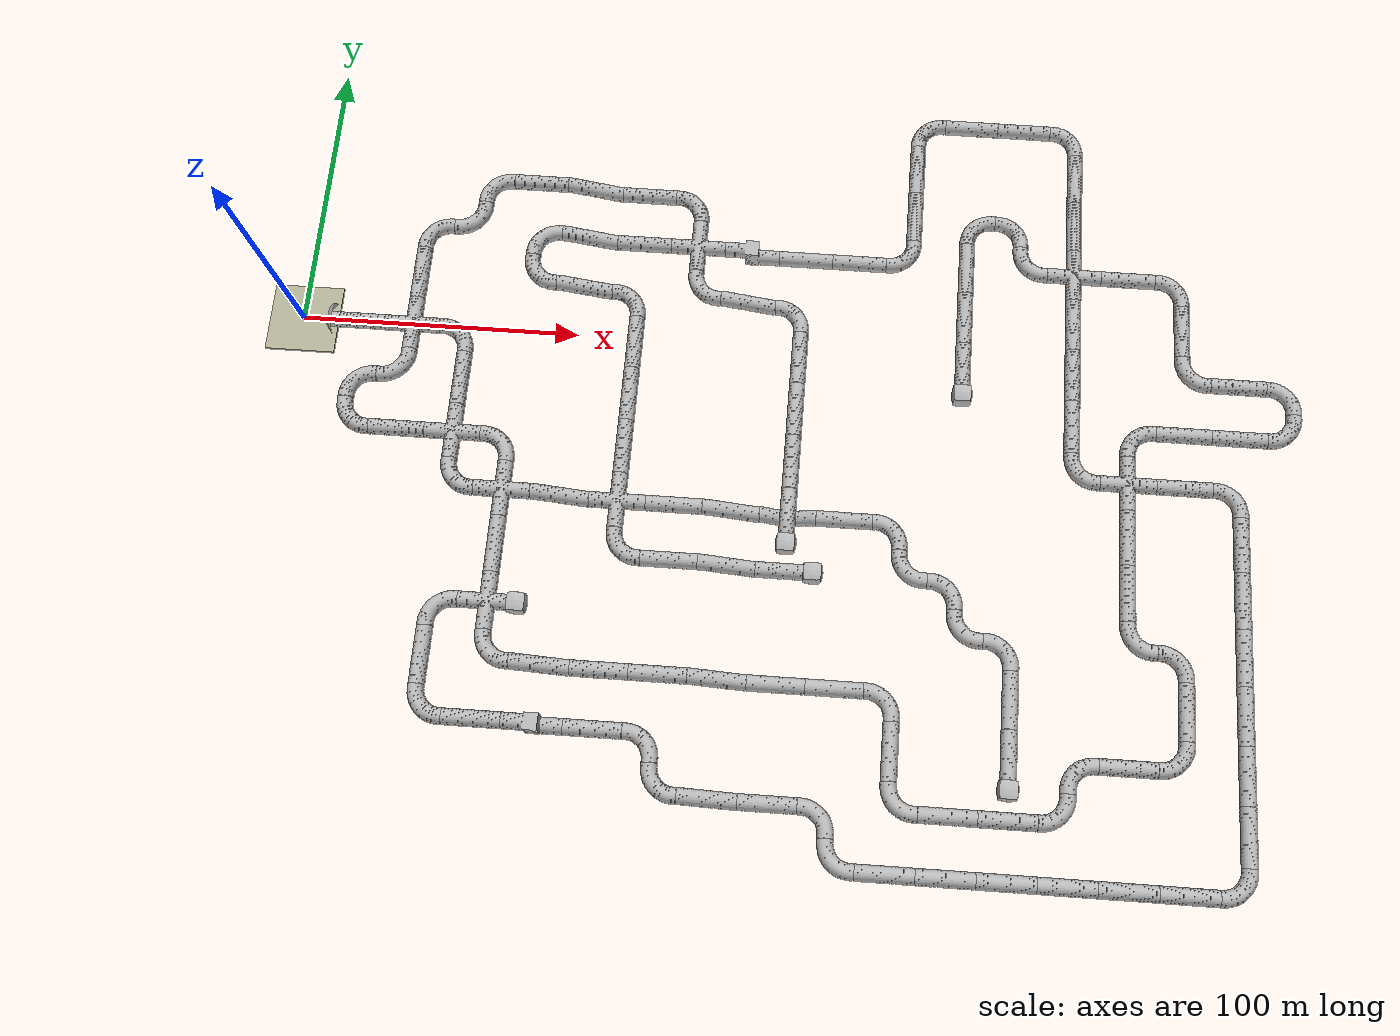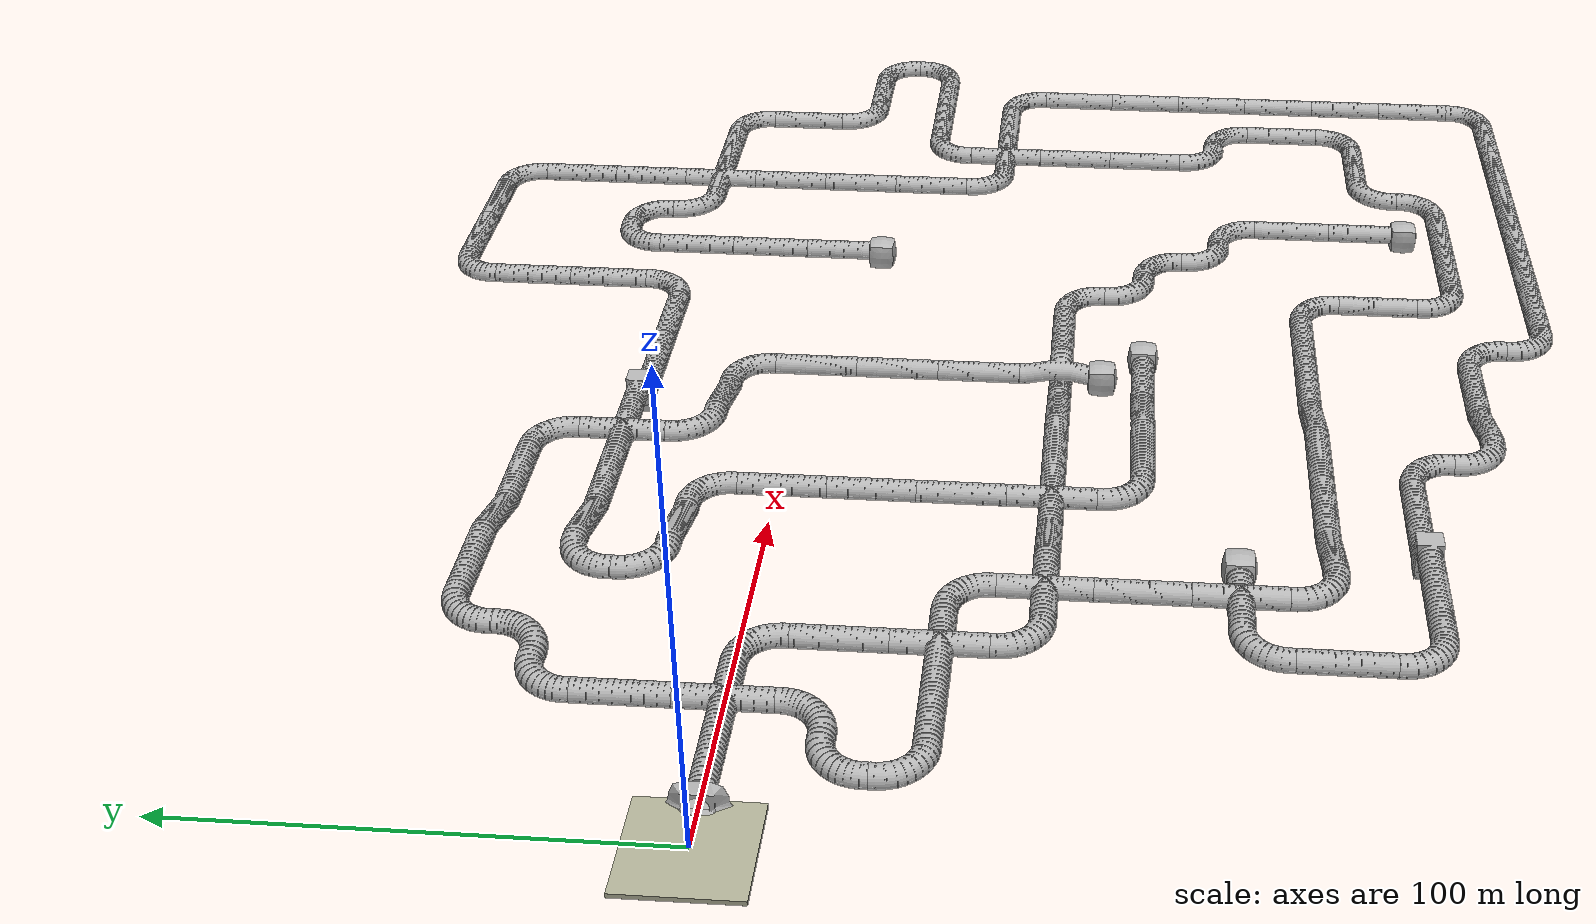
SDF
<sdf version="1.6">
 <world name="default">
  <scene>
   <ambient>0.0 0.0 0.0 1.0</ambient>
   <background>0.34 0.39 0.43 1.0</background>
   <grid>false</grid>
   <origin_visual>true</origin_visual>
  </scene>
  <model name="staging">
   <pose>0 0 -0.002 0 0 0</pose>
   <static>true</static>
   <link name="link">
    <pose>0 0 -0.5 0 0 0</pose>
    <visual name="visual">
     <geometry><box><size>25 25 1</size></box></geometry>
     <material>
      <script><uri>file://media/materials/scripts/gazebo.material</uri><name>Gazebo/Residential</name></script>
     </material>
    </visual>
    <collision name="collision"><geometry><box><size>25 20 1</size></box></geometry></collision>
   </link>
  </model>
  <model name="mine_entrance">
   <pose>10
        0
        -0.001
        0
        0
        -1.5707963267948966</pose>
   <static>true</static>
   <link name="link">
    <collision name="collision">
     <geometry>
      <mesh>
       <scale>0.008
                0.008 0.008</scale>
       <uri>model://mine_entrance/meshes/Entrance.obj</uri>
      </mesh>
     </geometry>
    </collision>
    <visual name="visual">
     <geometry>
      <mesh>
       <scale>0.008
                0.008 0.008</scale>
       <uri>model://mine_entrance/meshes/Entrance.obj</uri>
      </mesh>
     </geometry>
    </visual>
   </link>
  </model>
  <model name="start_area">
   <static>true</static>
   <pose>10
        0
        1.5
        0
        0
        0</pose>
   <link name="link">
    <collision name="collision">
     <geometry><box><size>1.0
                5.0
                3.0</size></box></geometry>
     <surface><contact><collide_without_contact>1</collide_without_contact></contact></surface>
    </collision>
    <sensor name="start_area_sensor" type="contact"><contact><collision>collision</collision></contact></sensor>
   </link>
   <plugin name="touch_start_area" filename="libTouchPlugin.so">
    <sensor>start_area_sensor</sensor>
    <time>0.001</time>
    <namespace>subt/start</namespace>
    <enabled>true</enabled>
   </plugin>
  </model>
  <plugin name="game_logic_plugin" filename="libGameLogicPlugin.so">
   <object_of_interest><name>cone_1</name></object_of_interest>
   <object_of_interest><name>cone_2</name></object_of_interest>
  </plugin>
  <light name="user_spot_light_0" type="spot">
   <pose>12 0 15 0 0.65 0</pose>
   <diffuse>1 1 1 1</diffuse>
   <specular>0.1 0.1 0.1 1</specular>
   <direction>0 0 -1</direction>
   <attenuation>
    <range>30</range>
    <constant>0.001</constant>
    <linear>0.01</linear>
    <quadratic>0.000</quadratic>
   </attenuation>
   <spot><inner_angle>0.0</inner_angle><outer_angle>1.5</outer_angle><falloff>0.01</falloff></spot>
  </light>
  <include><uri>model://mine_tile_5</uri><name>tile_20_1</name><pose>20 0 0 0 0 1.5708</pose></include>
  <include><uri>model://mine_tile_2</uri><name>tile_20_2</name><pose>20 -20 0 0 0 0</pose></include>
  <include><uri>model://mine_tile_2</uri><name>tile_20_3</name><pose>20 -40 0 0 0 1.5708</pose></include>
  <include><uri>model://mine_tile_2</uri><name>tile_40_1</name><pose>40 40 0 0 0 0</pose></include>
  <include><uri>model://mine_tile_5</uri><name>tile_40_2</name><pose>40 20 0 0 0 0</pose></include>
  <include><uri>model://mine_tile_1</uri><name>tile_40_3</name><pose>40 0 0 0 0 0</pose></include>
  <include><uri>model://mine_tile_2</uri><name>tile_40_4</name><pose>40 -20 0 0 0 3.14159</pose></include>
  <include><uri>model://mine_tile_5</uri><name>tile_40_5</name><pose>40 -40 0 0 0 1.5708</pose></include>
  <include><uri>model://mine_tile_2</uri><name>tile_60_1</name><pose>60 60 0 0 0 0</pose></include>
  <include><uri>model://mine_tile_2</uri><name>tile_60_2</name><pose>60 40 0 0 0 3.14159</pose></include>
  <include><uri>model://mine_tile_2</uri><name>tile_60_3</name><pose>60 0 0 0 0 -1.5708</pose></include>
  <include><uri>model://mine_tile_5</uri><name>tile_60_4</name><pose>60 -20 0 0 0 0</pose></include>
  <include><uri>model://mine_tile_1</uri><name>tile_60_5</name><pose>60 -40 0 0 0 0</pose></include>
  <include><uri>model://mine_tile_2</uri><name>tile_60_6</name><pose>60 -60 0 0 0 1.5708</pose></include>
  <include><uri>model://mine_tile_2</uri><name>tile_60_7</name><pose>60 -100 0 0 0 0</pose></include>
  <include><uri>model://mine_tile_5</uri><name>tile_60_8</name><pose>60 -120 0 0 0 0</pose></include>
  <include><uri>model://mine_tile_2</uri><name>tile_60_9</name><pose>60 -140 0 0 0 1.5708</pose></include>
  <include><uri>model://mine_tile_5</uri><name>tile_80_1</name><pose>80 60 0 0 0 1.5708</pose></include>
  <include><uri>model://mine_tile_2</uri><name>tile_80_2</name><pose>80 40 0 0 0 0</pose></include>
  <include><uri>model://mine_tile_2</uri><name>tile_80_3</name><pose>80 20 0 0 0 1.5708</pose></include>
  <include><uri>model://mine_tile_2</uri><name>tile_80_4</name><pose>80 -40 0 0 0 -1.5708</pose></include>
  <include><uri>model://mine_tile_1</uri><name>tile_80_5</name><pose>80 -60 0 0 0 0</pose></include>
  <include><uri>model://mine_tile_5</uri><name>tile_80_6</name><pose>80 -80 0 0 0 0</pose></include>
  <include><uri>model://mine_tile_1</uri><name>tile_80_7</name><pose>80 -100 0 0 0 0</pose></include>
  <include><uri>model://mine_tile_2</uri><name>tile_80_8</name><pose>80 -120 0 0 0 1.5708</pose></include>
  <include><uri>model://mine_tile_5</uri><name>tile_80_9</name><pose>80 -140 0 0 0 1.5708</pose></include>
  <include><uri>model://mine_tile_6</uri><name>tile_100_1</name><pose>100 60 -5 0 0 1.5708</pose></include>
  <include><uri>model://mine_tile_6</uri><name>tile_100_2</name><pose>100 40 -5 0 0 1.5708</pose></include>
  <include><uri>model://mine_tile_6</uri><name>tile_100_3</name><pose>100 20 -5 0 0 1.5708</pose></include>
  <include><uri>model://mine_tile_6</uri><name>tile_100_4</name><pose>100 -60 -5 0 0 1.5708</pose></include>
  <include><uri>model://mine_tile_6</uri><name>tile_100_5</name><pose>100 -120 -5 0 0 1.5708</pose></include>
  <include><uri>model://mine_tile_7</uri><name>tile_100_6</name><pose>100 -140 -5 0 0 1.5708</pose></include>
  <include><uri>model://mine_tile_5</uri><name>tile_120_1</name><pose>120 60 -5 0 0 1.5708</pose></include>
  <include><uri>model://mine_tile_5</uri><name>tile_120_2</name><pose>120 40 -5 0 0 1.5708</pose></include>
  <include><uri>model://mine_tile_2</uri><name>tile_120_3</name><pose>120 20 -5 0 0 -1.5708</pose></include>
  <include><uri>model://mine_tile_5</uri><name>tile_120_4</name><pose>120 0 -5 0 0 0</pose></include>
  <include><uri>model://mine_tile_5</uri><name>tile_120_5</name><pose>120 -20 -5 0 0 0</pose></include>
  <include><uri>model://mine_tile_5</uri><name>tile_120_6</name><pose>120 -40 -5 0 0 0</pose></include>
  <include><uri>model://mine_tile_1</uri><name>tile_120_7</name><pose>120 -60 -5 0 0 0</pose></include>
  <include><uri>model://mine_tile_2</uri><name>tile_120_8</name><pose>120 -80 -5 0 0 1.5708</pose></include>
  <include><uri>model://mine_tile_5</uri><name>tile_120_9</name><pose>120 -120 -5 0 0 1.5708</pose></include>
  <include><uri>model://mine_tile_5</uri><name>tile_120_10</name><pose>120 -140 -5 0 0 1.5708</pose></include>
  <include><uri>model://mine_tile_2</uri><name>tile_140_1</name><pose>140 60 -5 0 0 -1.5708</pose></include>
  <include><uri>model://mine_tile_1</uri><name>tile_140_2</name><pose>140 40 -5 0 0 0</pose></include>
  <include><uri>model://mine_tile_2</uri><name>tile_140_3</name><pose>140 20 -5 0 0 1.5708</pose></include>
  <include><uri>model://mine_tile_5</uri><name>tile_140_4</name><pose>140 -60 -5 0 0 1.5708</pose></include>
  <include><uri>model://mine_tile_5</uri><name>tile_140_5</name><pose>140 -80 -5 0 0 1.5708</pose></include>
  <include><uri>model://mine_tile_5</uri><name>tile_140_6</name><pose>140 -120 -5 0 0 1.5708</pose></include>
  <include><uri>model://mine_tile_2</uri><name>tile_140_7</name><pose>140 -140 -5 0 0 -1.5708</pose></include>
  <include><uri>model://mine_tile_2</uri><name>tile_140_8</name><pose>140 -160 -5 0 0 1.5708</pose></include>
  <include><uri>model://mine_tile_7</uri><name>tile_160_1</name><pose>160 40 -10 0 0 1.5708</pose></include>
  <include><uri>model://mine_tile_6</uri><name>tile_160_2</name><pose>160 20 -10 0 0 1.5708</pose></include>
  <include><uri>model://mine_tile_6</uri><name>tile_160_3</name><pose>160 -60 -10 0 0 1.5708</pose></include>
  <include><uri>model://mine_tile_6</uri><name>tile_160_4</name><pose>160 -80 -10 0 0 1.5708</pose></include>
  <include><uri>model://mine_tile_6</uri><name>tile_160_5</name><pose>160 -120 -10 0 0 1.5708</pose></include>
  <include><uri>model://mine_tile_6</uri><name>tile_160_6</name><pose>160 -160 -10 0 0 1.5708</pose></include>
  <include><uri>model://mine_tile_5</uri><name>tile_180_1</name><pose>180 40 -10 0 0 1.5708</pose></include>
  <include><uri>model://mine_tile_2</uri><name>tile_180_2</name><pose>180 20 -10 0 0 -1.5708</pose></include>
  <include><uri>model://mine_tile_5</uri><name>tile_180_3</name><pose>180 0 -10 0 0 0</pose></include>
  <include><uri>model://mine_tile_5</uri><name>tile_180_4</name><pose>180 -20 -10 0 0 0</pose></include>
  <include><uri>model://mine_tile_5</uri><name>tile_180_5</name><pose>180 -40 -10 0 0 0</pose></include>
  <include><uri>model://mine_tile_4</uri><name>tile_180_6</name><pose>180 -60 -10 0 0 0</pose></include>
  <include><uri>model://mine_tile_5</uri><name>tile_180_7</name><pose>180 -80 -10 0 0 1.5708</pose></include>
  <include><uri>model://mine_tile_5</uri><name>tile_180_8</name><pose>180 -120 -10 0 0 1.5708</pose></include>
  <include><uri>model://mine_tile_5</uri><name>tile_180_9</name><pose>180 -160 -10 0 0 1.5708</pose></include>
  <include><uri>model://mine_tile_5</uri><name>tile_200_1</name><pose>200 40 -10 0 0 1.5708</pose></include>
  <include><uri>model://mine_tile_5</uri><name>tile__200_2</name><pose>200 -60 -10 0 0 1.5708</pose></include>
  <include><uri>model://mine_tile_5</uri><name>tile__200_3</name><pose>200 -120 -10 0 0 1.5708</pose></include>
  <include><uri>model://mine_tile_2</uri><name>tile__200_4</name><pose>200 -160 -10 0 0 -1.5708</pose></include>
  <include><uri>model://mine_tile_2</uri><name>tile__200_5</name><pose>200 -180 -10 0 0 1.5708</pose></include>
  <include><uri>model://mine_tile_2</uri><name>tile_220_1</name><pose>220 100 -10 0 0 0</pose></include>
  <include><uri>model://mine_tile_5</uri><name>tile_220_2</name><pose>220 80 -10 0 0 0</pose></include>
  <include><uri>model://mine_tile_5</uri><name>tile_220_3</name><pose>220 60 -10 0 0 0</pose></include>
  <include><uri>model://mine_tile_2</uri><name>tile_220_4</name><pose>220 40 -10 0 0 3.14159</pose></include>
  <include><uri>model://mine_tile_2</uri><name>tile_220_5</name><pose>220 -60 -10 0 0 -1.5708</pose></include>
  <include><uri>model://mine_tile_2</uri><name>tile_220_6</name><pose>220 -80 -10 0 0 1.5708</pose></include>
  <include><uri>model://mine_tile_2</uri><name>tile_220_7</name><pose>220 -120 -10 0 0 -1.5708</pose></include>
  <include><uri>model://mine_tile_5</uri><name>tile_220_8</name><pose>220 -140 -10 0 0 0</pose></include>
  <include><uri>model://mine_tile_2</uri><name>tile_220_9</name><pose>220 -160 -10 0 0 1.5708</pose></include>
  <include><uri>model://mine_tile_5</uri><name>tile_220_10</name><pose>220 -180 -10 0 0 1.5708</pose></include>
  <include><uri>model://mine_tile_5</uri><name>tile_240_1</name><pose>240 100 -10 0 0 1.5708</pose></include>
  <include><uri>model://mine_tile_2</uri><name>tile_240_2</name><pose>240 60 -10 0 0 0</pose></include>
  <include><uri>model://mine_tile_5</uri><name>tile_240_3</name><pose>240 40 -10 0 0 0</pose></include>
  <include><uri>model://mine_tile_5</uri><name>tile_240_4</name><pose>240 20 -10 0 0 0</pose></include>
  <include><uri>model://mine_tile_5</uri><name>tile_240_5</name><pose>240 0 -10 0 0 0</pose></include>
  <include><uri>model://mine_tile_2</uri><name>tile_240_6</name><pose>240 -80 -10 0 0 -1.5708</pose></include>
  <include><uri>model://mine_tile_2</uri><name>tile_240_7</name><pose>240 -100 -10 0 0 1.5708</pose></include>
  <include><uri>model://mine_tile_5</uri><name>tile_240_8</name><pose>240 -160 -10 0 0 1.5708</pose></include>
  <include><uri>model://mine_tile_5</uri><name>tile_240_9</name><pose>240 -180 -10 0 0 1.5708</pose></include>
  <include><uri>model://mine_tile_5</uri><name>tile_260_1</name><pose>260 100 -10 0 0 1.5708</pose></include>
  <include><uri>model://mine_tile_2</uri><name>tile_260_2</name><pose>260 60 -10 0 0 -1.5708</pose></include>
  <include><uri>model://mine_tile_2</uri><name>tile_260_3</name><pose>260 40 -10 0 0 1.5708</pose></include>
  <include><uri>model://mine_tile_2</uri><name>tile_260_4</name><pose>260 -100 -10 0 0 -1.5708</pose></include>
  <include><uri>model://mine_tile_5</uri><name>tile_260_5</name><pose>260 -120 -10 0 0 0</pose></include>
  <include><uri>model://mine_tile_5</uri><name>tile_260_6</name><pose>260 -140 -10 0 0 0</pose></include>
  <include><uri>model://mine_tile_5</uri><name>tile_260_7</name><pose>260 -160 -10 0 0 1.5708</pose></include>
  <include><uri>model://mine_tile_5</uri><name>tile_260_8</name><pose>260 -180 -10 0 0 1.5708</pose></include>
  <include><uri>model://mine_tile_2</uri><name>tile_280_1</name><pose>280 100 -10 0 0 -1.5708</pose></include>
  <include><uri>model://mine_tile_5</uri><name>tile_280_2</name><pose>280 80 -10 0 0 0</pose></include>
  <include><uri>model://mine_tile_5</uri><name>tile_280_3</name><pose>280 60 -10 0 0 0</pose></include>
  <include><uri>model://mine_tile_1</uri><name>tile_280_4</name><pose>280 40 -10 0 0 0</pose></include>
  <include><uri>model://mine_tile_5</uri><name>tile_280_5</name><pose>280 20 -10 0 0 0</pose></include>
  <include><uri>model://mine_tile_5</uri><name>tile_280_6</name><pose>280 0 -10 0 0 0</pose></include>
  <include><uri>model://mine_tile_5</uri><name>tile_280_7</name><pose>280 -20 -10 0 0 0</pose></include>
  <include><uri>model://mine_tile_2</uri><name>tile_280_8</name><pose>280 -40 -10 0 0 1.5708</pose></include>
  <include><uri>model://mine_tile_2</uri><name>tile_280_9</name><pose>280 -140 -10 0 0 0</pose></include>
  <include><uri>model://mine_tile_2</uri><name>tile_280_10</name><pose>280 -160 -10 0 0 3.14159</pose></include>
  <include><uri>model://mine_tile_5</uri><name>tile_280_11</name><pose>280 -180 -10 0 0 1.5708</pose></include>
  <include><uri>model://mine_tile_5</uri><name>tile_300_1</name><pose>300 40 -10 0 0 1.5708</pose></include>
  <include><uri>model://mine_tile_2</uri><name>tile_300_2</name><pose>300 -20 -10 0 0 0</pose></include>
  <include><uri>model://mine_tile_1</uri><name>tile_300_3</name><pose>300 -40 -10 0 0 0</pose></include>
  <include><uri>model://mine_tile_5</uri><name>tile_300_4</name><pose>300 -60 -10 0 0 0</pose></include>
  <include><uri>model://mine_tile_5</uri><name>tile_300_5</name><pose>300 -80 -10 0 0 0</pose></include>
  <include><uri>model://mine_tile_2</uri><name>tile_300_6</name><pose>300 -100 -10 0 0 1.5708</pose></include>
  <include><uri>model://mine_tile_5</uri><name>tile_300_7</name><pose>300 -140 -10 0 0 1.5708</pose></include>
  <include><uri>model://mine_tile_5</uri><name>tile_300_8</name><pose>300 -180 -10 0 0 1.5708</pose></include>
  <include><uri>model://mine_tile_2</uri><name>tile_320_1</name><pose>320 40 -10 0 0 -1.5708</pose></include>
  <include><uri>model://mine_tile_5</uri><name>tile_320_2</name><pose>320 20 -10 0 0 0</pose></include>
  <include><uri>model://mine_tile_2</uri><name>tile_320_3</name><pose>320 0 -10 0 0 1.5708</pose></include>
  <include><uri>model://mine_tile_5</uri><name>tile_320_4</name><pose>320 -20 -10 0 0 1.5708</pose></include>
  <include><uri>model://mine_tile_5</uri><name>tile_320_5</name><pose>320 -40 -10 0 0 1.5708</pose></include>
  <include><uri>model://mine_tile_2</uri><name>tile_320_6</name><pose>320 -100 -10 0 0 -1.5708</pose></include>
  <include><uri>model://mine_tile_5</uri><name>tile_320_7</name><pose>320 -120 -10 0 0 0</pose></include>
  <include><uri>model://mine_tile_2</uri><name>tile_320_8</name><pose>320 -140 -10 0 0 3.14159</pose></include>
  <include><uri>model://mine_tile_5</uri><name>tile_320_9</name><pose>320 -180 -10 0 0 1.5708</pose></include>
  <include><uri>model://mine_tile_5</uri><name>tile_340_1</name><pose>340 0 -10 0 0 1.5708</pose></include>
  <include><uri>model://mine_tile_5</uri><name>tile_340_2</name><pose>340 -20 -10 0 0 1.5708</pose></include>
  <include><uri>model://mine_tile_2</uri><name>tile_340_3</name><pose>340 -40 -10 0 0 -1.5708</pose></include>
  <include><uri>model://mine_tile_5</uri><name>tile_340_4</name><pose>340 -60 -10 0 0 0</pose></include>
  <include><uri>model://mine_tile_5</uri><name>tile_340_5</name><pose>340 -80 -10 0 0 0</pose></include>
  <include><uri>model://mine_tile_5</uri><name>tile_340_6</name><pose>340 -100 -10 0 0 0</pose></include>
  <include><uri>model://mine_tile_5</uri><name>tile_340_7</name><pose>340 -120 -10 0 0 0</pose></include>
  <include><uri>model://mine_tile_5</uri><name>tile_340_8</name><pose>340 -140 -10 0 0 0</pose></include>
  <include><uri>model://mine_tile_5</uri><name>tile_340_9</name><pose>340 -160 -10 0 0 0</pose></include>
  <include><uri>model://mine_tile_2</uri><name>tile_340_10</name><pose>340 -180 -10 0 0 3.14159</pose></include>
  <include><uri>model://mine_tile_2</uri><name>tile_360_1</name><pose>360 0 -10 0 0 -1.5708</pose></include>
  <include><uri>model://mine_tile_2</uri><name>tile_360_2</name><pose>360 -20 -10 0 0 3.14159</pose></include>
  <include><uri>model://mine_tile_blocker</uri><name>blocker_90_1</name><pose>90 -100 0 0 0 0</pose></include>
  <include>
   <uri>model://mine_tile_blocker</uri>
   <name>blocker_180_1</name>
   <pose>180 -70 -10 0 0 0</pose>
  </include>
  <include>
   <uri>model://mine_tile_blocker</uri>
   <name>blocker_190_1</name>
   <pose>190 -80 -10 0 0 0</pose>
  </include>
  <include>
   <uri>model://mine_tile_blocker</uri>
   <name>blocker_240_1</name>
   <pose>240 -10 -10 0 0 0</pose>
  </include>
  <include>
   <uri>model://mine_tile_blocker</uri>
   <name>blocker_260_1</name>
   <pose>260 -150 -10 0 0 0</pose>
  </include>
  <plugin name="comms_broker_plugin" filename="libCommsBrokerPlugin.so"/>
  <plugin name="ros_interface_plugin" filename="librotors_gazebo_ros_interface_plugin.so"/>
 </world>
</sdf>

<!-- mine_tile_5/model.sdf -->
<sdf version="1.6">
  <model name="mine_tile_5">
    <static>true</static>
    <link name="link">
      <collision name="collision">
        <geometry>
          <mesh>
            <uri>model://mine_tile_5/meshes/mine_tile_5.dae</uri>
          </mesh>
        </geometry>
      </collision>
      <collision name="collision_ground">
        <geometry>
          <box>
            <size>20 20 0.001</size>
          </box>
        </geometry>
      </collision>
      <visual name="visual">
        <geometry>
          <mesh>
            <uri>model://mine_tile_5/meshes/mine_tile_5.dae</uri>
          </mesh>
        </geometry>
      </visual>
    </link>
  </model>
</sdf>

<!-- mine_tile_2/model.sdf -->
<sdf version="1.6">
  <model name="mine_tile_2">
    <static>true</static>
    <link name="link">
      <collision name="collision">
        <geometry>
          <mesh>
            <uri>model://mine_tile_2/meshes/mine_tile_2.dae</uri>
          </mesh>
        </geometry>
      </collision>
      <collision name="collision_ground">
        <geometry>
          <box>
            <size>20 20 0.001</size>
          </box>
        </geometry>
      </collision>
      <visual name="visual">
        <geometry>
          <mesh>
            <uri>model://mine_tile_2/meshes/mine_tile_2.dae</uri>
          </mesh>
        </geometry>
      </visual>
    </link>
  </model>
</sdf>

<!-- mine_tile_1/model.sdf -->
<sdf version="1.6">
  <model name="mine_tile_1">
    <static>true</static>
    <link name="link">
      <collision name="collision">
        <geometry>
          <mesh>
            <uri>model://mine_tile_1/meshes/mine_tile_1.dae</uri>
          </mesh>
        </geometry>
      </collision>
      <collision name="collision_ground">
        <geometry>
          <box>
            <size>20 20 0.001</size>
          </box>
        </geometry>
      </collision>
      <visual name="visual">
        <geometry>
          <mesh>
            <uri>model://mine_tile_1/meshes/mine_tile_1.dae</uri>
          </mesh>
        </geometry>
      </visual>
    </link>
  </model>
</sdf>

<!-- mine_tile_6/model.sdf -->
<sdf version="1.6">
  <model name="mine_tile_6">
    <static>true</static>
    <link name="link">
      <pose>0 0 0 0 0 0</pose>
      <collision name="collision">
        <geometry>
          <mesh>
            <uri>model://mine_tile_6/meshes/mine_tile_6.dae</uri>
          </mesh>
        </geometry>
      </collision>

      <collision name="collision_ground_1">
        <pose>0 9.323 5 0 0 0</pose>
        <geometry>
          <box>
            <size>6.356 1.354 0.001</size>
          </box>
        </geometry>
      </collision>

      <collision name="collision_ground_2">
        <pose>0 -0.070 2.467 0.2827433 0 0</pose>
        <geometry>
          <box>
            <size>6.356 18.152 0.001</size>
          </box>
        </geometry>
      </collision>

      <collision name="collision_ground_3">
        <pose>0 -9.272 0 0 0 0</pose>
        <geometry>
          <box>
            <size>6.356 1.455 0.001</size>
          </box>
        </geometry>
      </collision>

      <visual name="visual">
        <geometry>
          <mesh>
            <uri>model://mine_tile_6/meshes/mine_tile_6.dae</uri>
          </mesh>
        </geometry>
      </visual>
    </link>
  </model>
</sdf>

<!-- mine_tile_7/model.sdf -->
<sdf version="1.6">
  <model name="mine_tile_7">
    <static>true</static>
    <link name="link">
      <collision name="collision">
        <geometry>
          <mesh>
            <uri>model://mine_tile_7/meshes/mine_tile_7.dae</uri>
          </mesh>
        </geometry>
      </collision>
      <collision name="collision_ground_1">
        <pose>0 6.14028 5 0 0 0</pose>
        <geometry>
          <box>
            <size>7.19538 7.71943 0.001</size>
          </box>
        </geometry>
      </collision>

      <collision name="collision_ground_2">
        <pose>0 2.28057 2.5 0 0 0</pose>
        <geometry>
          <box>
            <size>7.19538 0.001 5</size>
          </box>
        </geometry>
      </collision>
      <collision name="collision_ground_3">
        <pose>0 -3.8572 0 0 0 0</pose>
        <geometry>
          <box>
            <size>7.19538 12.2806 0.001</size>
          </box>
        </geometry>
      </collision>
      <collision name="collision_ground_4">
        <pose>0 -2.42079 6.38525 0 0 0</pose>
        <geometry>
          <box>
            <size>7.19538 0.001 5.69769</size>
          </box>
        </geometry>
      </collision>
      <collision name="collision_ground_5">
        <pose>-2.83306 0.079873 4.58439 0 0 0</pose>
        <geometry>
          <box>
            <size>0.001 5.1333 9.16878</size>
          </box>
        </geometry>
      </collision>
      <collision name="collision_ground_6">
        <pose>2.83306 0.079873 4.58439 0 0 0</pose>
        <geometry>
          <box>
            <size>0.001 5.1333 9.16878</size>
          </box>
        </geometry>
      </collision>
      <collision name="collision_ground_7">
        <pose>0 0.079873 8.72854 0 0 0</pose>
        <geometry>
          <box>
            <size>7.95991 5.1333 0.001</size>
          </box>
        </geometry>
      </collision>

      <visual name="visual">
        <geometry>
          <mesh>
            <uri>model://mine_tile_7/meshes/mine_tile_7.dae</uri>
          </mesh>
        </geometry>
      </visual>
    </link>
  </model>
</sdf>

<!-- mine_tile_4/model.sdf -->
<sdf version="1.6">
  <model name="mine_tile_4">
    <static>true</static>
    <link name="link">
      <pose>0 0 0 0 0 0</pose>
      <collision name="collision">
        <geometry>
          <mesh>
            <uri>model://mine_tile_4/meshes/mine_tile_4.dae</uri>
          </mesh>
        </geometry>
      </collision>

      <collision name="collision_ground_1">
        <pose>0 9.32313 0 0 0 0</pose>
        <geometry>
          <box>
            <size>4.96733 1.35375 0.001</size>
          </box>
        </geometry>
      </collision>

      <collision name="collision_ground_2">
        <pose>0 5.630 0.600 -0.196366994 0 0</pose>
        <geometry>
          <box>
            <size>4.96733 6.1507 0.001</size>
          </box>
        </geometry>
      </collision>

      <collision name="collision_ground_3">
        <pose>0 0 1.2 0 0 0</pose>
        <geometry>
          <box>
            <size>4.96733 5.2175 0.001</size>
          </box>
        </geometry>
      </collision>

      <collision name="collision_ground_4">
        <pose>0 -5.620 0.600000 0.196366994 0 0</pose>
        <geometry>
          <box>
            <size>4.96733 6.1507 0.001</size>
          </box>
        </geometry>
      </collision>

      <collision name="collision_ground_5">
        <pose>0 -9.31813 0 0 0 0</pose>
        <geometry>
          <box>
            <size>4.96733 1.36375 0.001</size>
          </box>
        </geometry>
      </collision>

      <collision name="collision_ground_6">
        <pose>9.32313 0 0 0 0 0</pose>
        <geometry>
          <box>
            <size>1.35375 4.96733 0.001</size>
          </box>
        </geometry>
      </collision>

      <collision name="collision_ground_7">
        <pose>5.630 0 -1.25 0 -0.39287361 0</pose>
        <geometry>
          <box>
            <size>6.53001 4.96733 0.001</size>
          </box>
        </geometry>
      </collision>

      <collision name="collision_ground_8">
        <pose>0 0 -2.5 0 0 0</pose>
        <geometry>
          <box>
            <size>5.2175 4.96733 0.001</size>
          </box>
        </geometry>
      </collision>

      <collision name="collision_ground_9">
        <pose>-5.620 0 -1.25 0 0.39287361 0</pose>
        <geometry>
          <box>
            <size>6.53001 4.96733 0.001</size>
          </box>
        </geometry>
      </collision>

      <collision name="collision_ground_10">
        <pose>-9.31813 0 0 0 0 0</pose>
        <geometry>
          <box>
            <size>1.36375 4.96733 0.001</size>
          </box>
        </geometry>
      </collision>

      <visual name="visual">
        <geometry>
          <mesh>
            <uri>model://mine_tile_4/meshes/mine_tile_4.dae</uri>
          </mesh>
        </geometry>
      </visual>
    </link>
  </model>
</sdf>

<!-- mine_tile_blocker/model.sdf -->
<sdf version="1.6">
  <model name="mine_tile_blocker">
    <static>true</static>
    <link name="link">
      <pose>0 0 0 0 0 0</pose>
      <collision name="collision">
        <geometry>
          <mesh>
            <uri>model://mine_tile_blocker/meshes/mine_tile_blocker.dae</uri>
          </mesh>
        </geometry>
      </collision>
      <visual name="visual">
        <geometry>
          <mesh>
            <uri>model://mine_tile_blocker/meshes/mine_tile_blocker.dae</uri>
          </mesh>
        </geometry>
      </visual>
    </link>
  </model>
</sdf>
